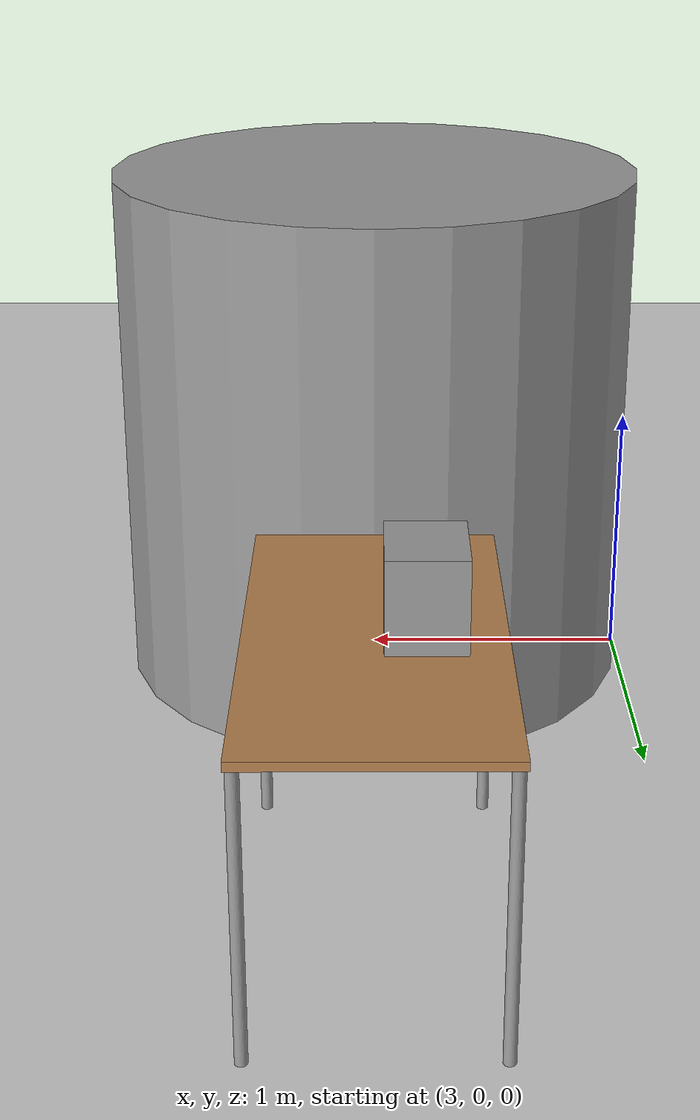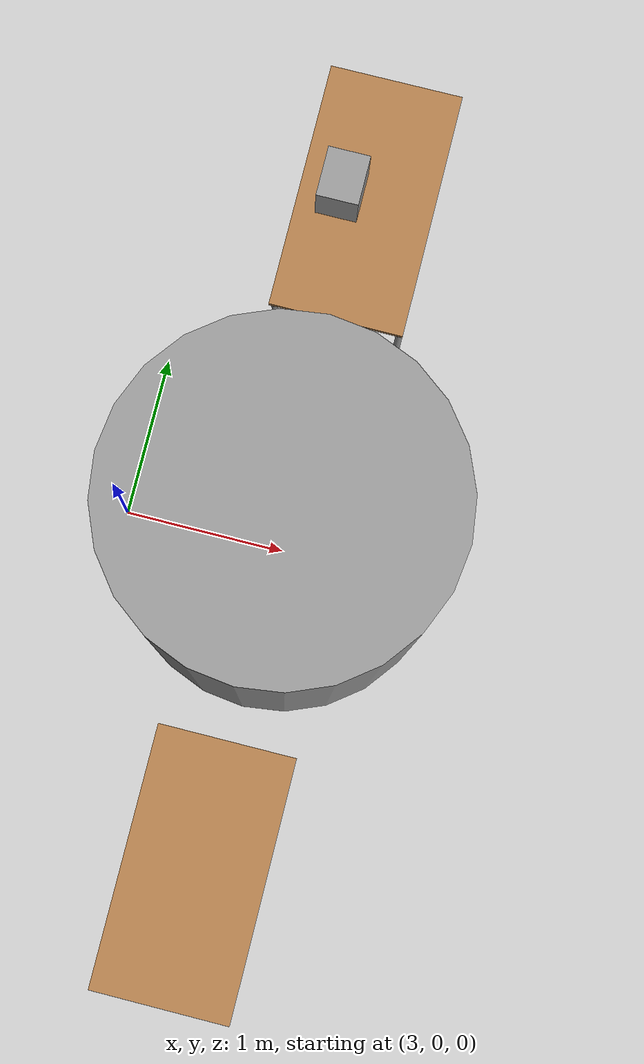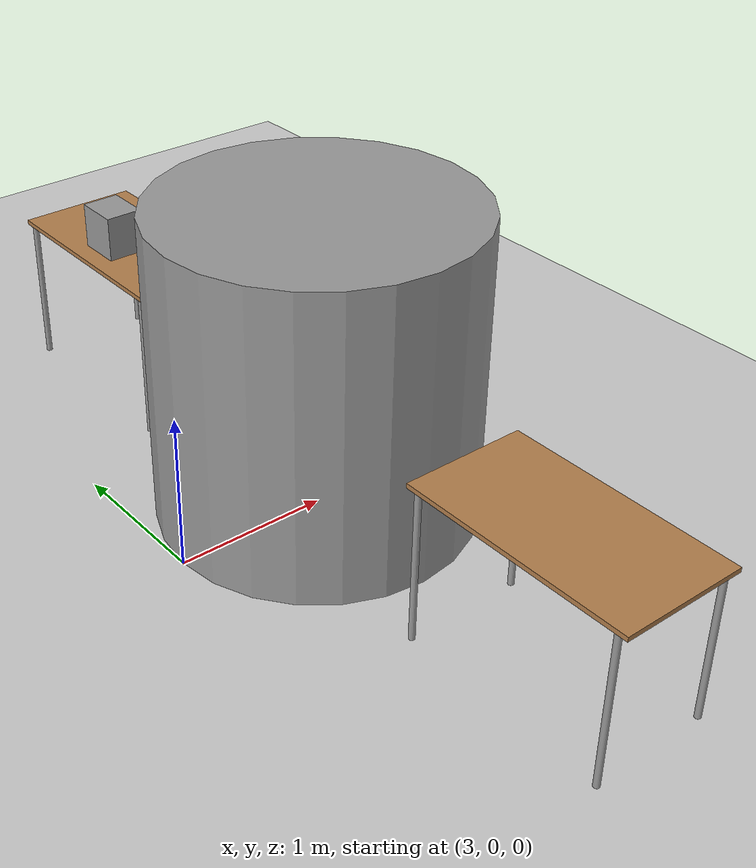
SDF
<?xml version="1.0" ?>
<sdf version="1.4">
  <!-- We use a custom world for the iiwa so that the camera angle is launched correctly. -->
  <!-- One can change this world to his needs or use another one. -->

  <world name="default">

    <include>
      <uri>model://ground_plane</uri>
    </include>

    <!-- Global light source -->
    <include>
      <uri>model://sun</uri>
    </include>

    <!-- Focus camera -->
    <gui fullscreen='0'>
      <camera name='user_camera'>
        <pose>3.88902 -3.3977 2.59294 -0 0.275643 2.34819</pose>
        <view_controller>orbit</view_controller>
        <projection_type>perspective</projection_type>
      </camera>
    </gui>

    <model name='table'>
      <static>1</static>
      <link name='link'>
        <collision name='surface'>
          <pose>0 0 1 0 -0 0</pose>
          <geometry>
            <box>
              <size>1.5 0.8 0.03</size>
            </box>
          </geometry>
          <surface>
            <friction>
              <ode>
                <mu>0.6</mu>
                <mu2>0.6</mu2>
              </ode>
              <torsional>
                <ode/>
              </torsional>
            </friction>
            <contact>
              <ode/>
            </contact>
            <bounce/>
          </surface>
          <max_contacts>10</max_contacts>
        </collision>
        <visual name='visual1'>
          <pose>0 0 1 0 -0 0</pose>
          <geometry>
            <box>
              <size>1.5 0.8 0.03</size>
            </box>
          </geometry>
          <material>
            <script>
              <uri>file://media/materials/scripts/gazebo.material</uri>
              <name>Gazebo/Wood</name>
            </script>
          </material>
        </visual>
        <collision name='front_left_leg'>
          <pose>0.68 0.38 0.5 0 -0 0</pose>
          <geometry>
            <cylinder>
              <radius>0.02</radius>
              <length>1</length>
            </cylinder>
          </geometry>
          <max_contacts>10</max_contacts>
          <surface>
            <contact>
              <ode/>
            </contact>
            <bounce/>
            <friction>
              <torsional>
                <ode/>
              </torsional>
              <ode/>
            </friction>
          </surface>
        </collision>
        <visual name='front_left_leg'>
          <pose>0.68 0.38 0.5 0 -0 0</pose>
          <geometry>
            <cylinder>
              <radius>0.02</radius>
              <length>1</length>
            </cylinder>
          </geometry>
          <material>
            <script>
              <uri>file://media/materials/scripts/gazebo.material</uri>
              <name>Gazebo/Grey</name>
            </script>
          </material>
        </visual>
        <collision name='front_right_leg'>
          <pose>0.68 -0.38 0.5 0 -0 0</pose>
          <geometry>
            <cylinder>
              <radius>0.02</radius>
              <length>1</length>
            </cylinder>
          </geometry>
          <max_contacts>10</max_contacts>
          <surface>
            <contact>
              <ode/>
            </contact>
            <bounce/>
            <friction>
              <torsional>
                <ode/>
              </torsional>
              <ode/>
            </friction>
          </surface>
        </collision>
        <visual name='front_right_leg'>
          <pose>0.68 -0.38 0.5 0 -0 0</pose>
          <geometry>
            <cylinder>
              <radius>0.02</radius>
              <length>1</length>
            </cylinder>
          </geometry>
          <material>
            <script>
              <uri>file://media/materials/scripts/gazebo.material</uri>
              <name>Gazebo/Grey</name>
            </script>
          </material>
        </visual>
        <collision name='back_right_leg'>
          <pose>-0.68 -0.38 0.5 0 -0 0</pose>
          <geometry>
            <cylinder>
              <radius>0.02</radius>
              <length>1</length>
            </cylinder>
          </geometry>
          <max_contacts>10</max_contacts>
          <surface>
            <contact>
              <ode/>
            </contact>
            <bounce/>
            <friction>
              <torsional>
                <ode/>
              </torsional>
              <ode/>
            </friction>
          </surface>
        </collision>
        <visual name='back_right_leg'>
          <pose>-0.68 -0.38 0.5 0 -0 0</pose>
          <geometry>
            <cylinder>
              <radius>0.02</radius>
              <length>1</length>
            </cylinder>
          </geometry>
          <material>
            <script>
              <uri>file://media/materials/scripts/gazebo.material</uri>
              <name>Gazebo/Grey</name>
            </script>
          </material>
        </visual>
        <collision name='back_left_leg'>
          <pose>-0.68 0.38 0.5 0 -0 0</pose>
          <geometry>
            <cylinder>
              <radius>0.02</radius>
              <length>1</length>
            </cylinder>
          </geometry>
          <max_contacts>10</max_contacts>
          <surface>
            <contact>
              <ode/>
            </contact>
            <bounce/>
            <friction>
              <torsional>
                <ode/>
              </torsional>
              <ode/>
            </friction>
          </surface>
        </collision>
        <visual name='back_left_leg'>
          <pose>-0.68 0.38 0.5 0 -0 0</pose>
          <geometry>
            <cylinder>
              <radius>0.02</radius>
              <length>1</length>
            </cylinder>
          </geometry>
          <material>
            <script>
              <uri>file://media/materials/scripts/gazebo.material</uri>
              <name>Gazebo/Grey</name>
            </script>
          </material>
        </visual>
        <self_collide>0</self_collide>
        <enable_wind>0</enable_wind>
        <kinematic>0</kinematic>
      </link>
      <pose>4 2 0 0 -0 1.5707963</pose>
    </model>

    <model name='unit_box'>
      <pose>3.85 2 1.165 0 -0 0</pose>
      <link name='link'>
        <inertial>
          <mass>1.2</mass>
          <inertia>
            <ixx>0.166667</ixx>
            <ixy>0</ixy>
            <ixz>0</ixz>
            <iyy>0.166667</iyy>
            <iyz>0</iyz>
            <izz>0.166667</izz>
          </inertia>
          <pose>0 0 0 0 -0 0</pose>
        </inertial>
        <collision name='collision'>
          <geometry>
            <box>
              <size>0.25 0.3 0.3</size>
            </box>
          </geometry>
          <max_contacts>10000</max_contacts>
          <surface>
            <friction>
              <ode>
                <mu>100</mu>
                <mu2>100</mu2>
              </ode>
              <torsional>
                <coefficient>100</coefficient>
                <surface_radius>100</surface_radius>
                <use_patch_radius>false</use_patch_radius>
              </torsional>
            </friction>
            <contact>
              <ode>
                <kp>1e+5</kp>
                <kd>1e+2</kd>
                <max_vel>2</max_vel>
                <min_depth>0.01</min_depth>
              </ode>
            </contact>
            <bounce/>
          </surface>
        </collision>
        <visual name='visual'>
          <geometry>
            <box>
              <size>0.25 0.3 0.3</size>
            </box>
          </geometry>
          <material>
            <script>
              <name>Gazebo/Grey</name>
              <uri>file://media/materials/scripts/gazebo.material</uri>
            </script>
          </material>
        </visual>
        <self_collide>0</self_collide>
        <enable_wind>0</enable_wind>
        <kinematic>0</kinematic>
      </link>
    </model>

    <model name='table2'>
      <static>1</static>
      <link name='link'>
        <collision name='surface'>
          <pose>0 0 1 0 -0 0</pose>
          <geometry>
            <box>
              <size>1.5 0.8 0.03</size>
            </box>
          </geometry>
          <surface>
            <friction>
              <ode>
                <mu>0.6</mu>
                <mu2>0.6</mu2>
              </ode>
              <torsional>
                <ode/>
              </torsional>
            </friction>
            <contact>
              <ode/>
            </contact>
            <bounce/>
          </surface>
          <max_contacts>10</max_contacts>
        </collision>
        <visual name='visual1'>
          <pose>0 0 1 0 -0 0</pose>
          <geometry>
            <box>
              <size>1.5 0.8 0.03</size>
            </box>
          </geometry>
          <material>
            <script>
              <uri>file://media/materials/scripts/gazebo.material</uri>
              <name>Gazebo/Wood</name>
            </script>
          </material>
        </visual>
        <collision name='front_left_leg'>
          <pose>0.68 0.38 0.5 0 -0 0</pose>
          <geometry>
            <cylinder>
              <radius>0.02</radius>
              <length>1</length>
            </cylinder>
          </geometry>
          <max_contacts>10</max_contacts>
          <surface>
            <contact>
              <ode/>
            </contact>
            <bounce/>
            <friction>
              <torsional>
                <ode/>
              </torsional>
              <ode/>
            </friction>
          </surface>
        </collision>
        <visual name='front_left_leg'>
          <pose>0.68 0.38 0.5 0 -0 0</pose>
          <geometry>
            <cylinder>
              <radius>0.02</radius>
              <length>1</length>
            </cylinder>
          </geometry>
          <material>
            <script>
              <uri>file://media/materials/scripts/gazebo.material</uri>
              <name>Gazebo/Grey</name>
            </script>
          </material>
        </visual>
        <collision name='front_right_leg'>
          <pose>0.68 -0.38 0.5 0 -0 0</pose>
          <geometry>
            <cylinder>
              <radius>0.02</radius>
              <length>1</length>
            </cylinder>
          </geometry>
          <max_contacts>10</max_contacts>
          <surface>
            <contact>
              <ode/>
            </contact>
            <bounce/>
            <friction>
              <torsional>
                <ode/>
              </torsional>
              <ode/>
            </friction>
          </surface>
        </collision>
        <visual name='front_right_leg'>
          <pose>0.68 -0.38 0.5 0 -0 0</pose>
          <geometry>
            <cylinder>
              <radius>0.02</radius>
              <length>1</length>
            </cylinder>
          </geometry>
          <material>
            <script>
              <uri>file://media/materials/scripts/gazebo.material</uri>
              <name>Gazebo/Grey</name>
            </script>
          </material>
        </visual>
        <collision name='back_right_leg'>
          <pose>-0.68 -0.38 0.5 0 -0 0</pose>
          <geometry>
            <cylinder>
              <radius>0.02</radius>
              <length>1</length>
            </cylinder>
          </geometry>
          <max_contacts>10</max_contacts>
          <surface>
            <contact>
              <ode/>
            </contact>
            <bounce/>
            <friction>
              <torsional>
                <ode/>
              </torsional>
              <ode/>
            </friction>
          </surface>
        </collision>
        <visual name='back_right_leg'>
          <pose>-0.68 -0.38 0.5 0 -0 0</pose>
          <geometry>
            <cylinder>
              <radius>0.02</radius>
              <length>1</length>
            </cylinder>
          </geometry>
          <material>
            <script>
              <uri>file://media/materials/scripts/gazebo.material</uri>
              <name>Gazebo/Grey</name>
            </script>
          </material>
        </visual>
        <collision name='back_left_leg'>
          <pose>-0.68 0.38 0.5 0 -0 0</pose>
          <geometry>
            <cylinder>
              <radius>0.02</radius>
              <length>1</length>
            </cylinder>
          </geometry>
          <max_contacts>10</max_contacts>
          <surface>
            <contact>
              <ode/>
            </contact>
            <bounce/>
            <friction>
              <torsional>
                <ode/>
              </torsional>
              <ode/>
            </friction>
          </surface>
        </collision>
        <visual name='back_left_leg'>
          <pose>-0.68 0.38 0.5 0 -0 0</pose>
          <geometry>
            <cylinder>
              <radius>0.02</radius>
              <length>1</length>
            </cylinder>
          </geometry>
          <material>
            <script>
              <uri>file://media/materials/scripts/gazebo.material</uri>
              <name>Gazebo/Grey</name>
            </script>
          </material>
        </visual>
        <self_collide>0</self_collide>
        <enable_wind>0</enable_wind>
        <kinematic>0</kinematic>
      </link>
      <pose>4 -2 0 0 -0 1.5707963</pose>
    </model>

    <model name='unit_cylinder'>
      <pose>4 0 1 0 -0 0</pose>
      <link name='link'>
        <inertial>
          <mass>1000</mass>
          <inertia>
            <ixx>145.833</ixx>
            <ixy>0</ixy>
            <ixz>0</ixz>
            <iyy>145.833</iyy>
            <iyz>0</iyz>
            <izz>125</izz>
          </inertia>
          <pose>0 0 0 0 -0 0</pose>
        </inertial>
        <collision name='collision'>
          <geometry>
            <cylinder>
              <radius>1</radius>
              <length>2</length>
            </cylinder>
          </geometry>
          <max_contacts>10</max_contacts>
          <surface>
            <contact>
              <ode/>
            </contact>
            <bounce/>
            <friction>
              <torsional>
                <ode/>
              </torsional>
              <ode/>
            </friction>
          </surface>
        </collision>
        <visual name='visual'>
          <geometry>
            <cylinder>
              <radius>1</radius>
              <length>2</length>
            </cylinder>
          </geometry>
          <material>
            <script>
              <name>Gazebo/Grey</name>
              <uri>file://media/materials/scripts/gazebo.material</uri>
            </script>
          </material>
        </visual>
        <self_collide>0</self_collide>
        <enable_wind>0</enable_wind>
        <kinematic>0</kinematic>
      </link>
    </model>

  </world>

</sdf>
